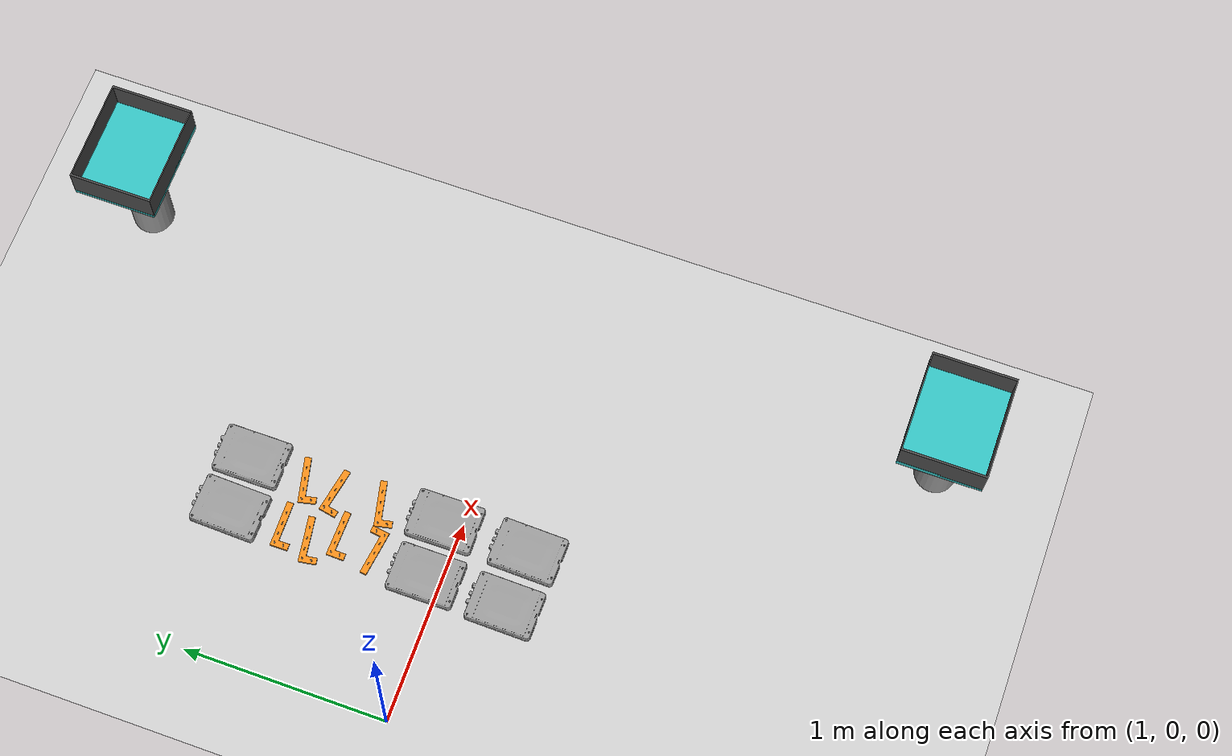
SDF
<sdf version="1.6">
 <world name="default">
  <model name="ground_plane">
   <static>1</static>
   <link name="link">
    <collision name="collision">
     <geometry><plane><normal>0 0 1</normal><size>100 100</size></plane></geometry>
     <surface><friction><ode><mu>100</mu><mu2>50</mu2></ode></friction></surface>
    </collision>
    <visual name="visual">
     <cast_shadows>0</cast_shadows>
     <geometry><plane><normal>0 0 1</normal><size>100 100</size></plane></geometry>
     <material>
      <script><uri>file://media/materials/scripts/gazebo.material</uri><name>PR2/Grey3</name></script>
     </material>
    </visual>
   </link>
  </model>
  <model name="bin_3">
   <static>1</static>
   <link name="column_link">
    <collision name="column">
     <pose>0 0 0.3 0 -0 0</pose>
     <geometry><box><size>0.4 0.5 0.6</size></box></geometry>
     <surface><friction><ode><mu>0.6</mu><mu2>0.6</mu2></ode></friction></surface>
    </collision>
    <visual name="column">
     <pose>0 0 0.3 0 -0 0</pose>
     <geometry><cylinder><radius>0.1</radius><length>0.6</length></cylinder></geometry>
     <material>
      <script><uri>file://media/materials/scripts/gazebo.material</uri><name>PR2/Grey4</name></script>
     </material>
    </visual>
   </link>
   <joint name="column2table" type="revolute">
    <parent>column_link</parent>
    <child>table_link</child>
    <pose>0 0 0.3 0 -0 0</pose>
   </joint>
   <link name="table_link">
    <collision name="surface">
     <pose>0 0 0.6 0 -0 0</pose>
     <geometry><box><size>0.5 0.4 0.03</size></box></geometry>
     <surface><friction><ode><mu>0.6</mu><mu2>0.6</mu2></ode></friction></surface>
    </collision>
    <visual name="surface">
     <pose>0 0 0.6 0 -0 0</pose>
     <geometry><box><size>0.5 0.4 0.03</size></box></geometry>
     <material>
      <script><uri>file://media/materials/scripts/gazebo.material</uri><name>Gazebo/Turquoise</name></script>
     </material>
    </visual>
   </link>
   <joint name="table2bin" type="prismatic">
    <parent>table_link</parent>
    <child>bin_link</child>
    <pose>0 0 1 0 -0 0</pose>
    <axis>
     <xyz>0 0 1</xyz>
     <use_parent_model_frame>0</use_parent_model_frame>
     <limit><lower>-1e+16</lower><upper>1e+16</upper></limit>
     <dynamics><spring_reference>0</spring_reference><spring_stiffness>0</spring_stiffness></dynamics>
    </axis>
   </joint>
   <link name="bin_link">
    <collision name="bin">
     <pose>0 0 0.68 0 -0 0</pose>
     <geometry><mesh><uri>model://table_bin/meshes/big_bin.stl</uri></mesh></geometry>
    </collision>
    <visual name="bin">
     <pose>0 0 0.68 0 -0 0</pose>
     <geometry><mesh><uri>model://table_bin/meshes/big_bin.dae</uri></mesh></geometry>
     <material>
      <script><uri>file://media/materials/scripts/gazebo.material</uri><name>Gazebo/DarkGrey</name></script>
     </material>
    </visual>
   </link>
   <pose>3 -2 0 0 -0 0</pose>
  </model>
  <model name="bin_4">
   <static>1</static>
   <link name="column_link">
    <collision name="column">
     <pose>0 0 0.3 0 -0 0</pose>
     <geometry><box><size>0.4 0.5 0.6</size></box></geometry>
     <surface><friction><ode><mu>0.6</mu><mu2>0.6</mu2></ode></friction></surface>
    </collision>
    <visual name="column">
     <pose>0 0 0.3 0 -0 0</pose>
     <geometry><cylinder><radius>0.1</radius><length>0.6</length></cylinder></geometry>
     <material>
      <script><uri>file://media/materials/scripts/gazebo.material</uri><name>PR2/Grey4</name></script>
     </material>
    </visual>
   </link>
   <joint name="column2table" type="revolute">
    <parent>column_link</parent>
    <child>table_link</child>
    <pose>0 0 0.3 0 -0 0</pose>
   </joint>
   <link name="table_link">
    <collision name="surface">
     <pose>0 0 0.6 0 -0 0</pose>
     <geometry><box><size>0.5 0.4 0.03</size></box></geometry>
     <surface><friction><ode><mu>0.6</mu><mu2>0.6</mu2></ode></friction></surface>
    </collision>
    <visual name="surface">
     <pose>0 0 0.6 0 -0 0</pose>
     <geometry><box><size>0.5 0.4 0.03</size></box></geometry>
     <material>
      <script><uri>file://media/materials/scripts/gazebo.material</uri><name>Gazebo/Turquoise</name></script>
     </material>
    </visual>
   </link>
   <joint name="table2bin" type="prismatic">
    <parent>table_link</parent>
    <child>bin_link</child>
    <pose>0 0 1 0 -0 0</pose>
    <axis>
     <xyz>0 0 1</xyz>
     <use_parent_model_frame>0</use_parent_model_frame>
     <limit><lower>-1e+16</lower><upper>1e+16</upper></limit>
     <dynamics><spring_reference>0</spring_reference><spring_stiffness>0</spring_stiffness></dynamics>
    </axis>
   </joint>
   <link name="bin_link">
    <collision name="bin">
     <pose>0 0 0.68 0 -0 0</pose>
     <geometry><mesh><uri>model://table_bin/meshes/big_bin.stl</uri></mesh></geometry>
    </collision>
    <visual name="bin">
     <pose>0 0 0.68 0 -0 0</pose>
     <geometry><mesh><uri>model://table_bin/meshes/big_bin.dae</uri></mesh></geometry>
     <material>
      <script><uri>file://media/materials/scripts/gazebo.material</uri><name>Gazebo/DarkGrey</name></script>
     </material>
    </visual>
   </link>
   <pose>3 2 0 0 -0 0</pose>
  </model>
  <model name="leaf6">
   <static>0</static>
   <link name="leaf_cell_link">
    <collision name="collision">
     <geometry><box><size>0.2228 0.3149 0.035</size></box></geometry>
     <surface><friction><ode><mu>1</mu><mu2>1</mu2></ode></friction></surface>
    </collision>
    <visual name="visual">
     <geometry><mesh><uri>model://leaf_cell/meshes/leaf_cell.dae</uri></mesh></geometry>
     <material>
      <script><uri>file://media/materials/scripts/gazebo.material</uri><name>Gazebo/Grey</name></script>
     </material>
    </visual>
    <inertial>
     <pose>0 0 0 0 0 -1.5707</pose>
     <mass>0.1</mass>
     <inertia>
      <ixx>0.000539835</ixx>
      <iyy>0.00075853</iyy>
      <izz>0.0012813</izz>
      <ixy>0</ixy>
      <ixz>0</ixz>
      <iyz>0</iyz>
     </inertia>
    </inertial>
   </link>
   <pose>1.72914 0.869771 0.823034 0.000103 0 -2e-06</pose>
  </model>
  <model name="leaf66">
   <static>0</static>
   <link name="leaf_cell_link">
    <collision name="collision">
     <geometry><box><size>0.2228 0.3149 0.035</size></box></geometry>
     <surface><friction><ode><mu>1</mu><mu2>1</mu2></ode></friction></surface>
    </collision>
    <visual name="visual">
     <geometry><mesh><uri>model://leaf_cell/meshes/leaf_cell.dae</uri></mesh></geometry>
     <material>
      <script><uri>file://media/materials/scripts/gazebo.material</uri><name>Gazebo/Grey</name></script>
     </material>
    </visual>
    <inertial>
     <pose>0 0 0 0 0 -1.5707</pose>
     <mass>0.1</mass>
     <inertia>
      <ixx>0.000539835</ixx>
      <iyy>0.00075853</iyy>
      <izz>0.0012813</izz>
      <ixy>0</ixy>
      <ixz>0</ixz>
      <iyz>0</iyz>
     </inertia>
    </inertial>
   </link>
   <pose>1.47735 0.870249 0.823044 0 5.4e-05 -0.028102</pose>
  </model>
  <model name="leaf5">
   <static>0</static>
   <link name="leaf_cell_link">
    <collision name="collision">
     <geometry><box><size>0.2228 0.3149 0.035</size></box></geometry>
     <surface><friction><ode><mu>1</mu><mu2>1</mu2></ode></friction></surface>
    </collision>
    <visual name="visual">
     <geometry><mesh><uri>model://leaf_cell/meshes/leaf_cell.dae</uri></mesh></geometry>
     <material>
      <script><uri>file://media/materials/scripts/gazebo.material</uri><name>Gazebo/Grey</name></script>
     </material>
    </visual>
    <inertial>
     <pose>0 0 0 0 0 -1.5707</pose>
     <mass>0.1</mass>
     <inertia>
      <ixx>0.000539835</ixx>
      <iyy>0.00075853</iyy>
      <izz>0.0012813</izz>
      <ixy>0</ixy>
      <ixz>0</ixz>
      <iyz>0</iyz>
     </inertia>
    </inertial>
   </link>
   <pose>1.73347 -0.029325 0.823034 -0.000103 -0 0.004565</pose>
  </model>
  <model name="leaf55">
   <static>0</static>
   <link name="leaf_cell_link">
    <collision name="collision">
     <geometry><box><size>0.2228 0.3149 0.035</size></box></geometry>
     <surface><friction><ode><mu>1</mu><mu2>1</mu2></ode></friction></surface>
    </collision>
    <visual name="visual">
     <geometry><mesh><uri>model://leaf_cell/meshes/leaf_cell.dae</uri></mesh></geometry>
     <material>
      <script><uri>file://media/materials/scripts/gazebo.material</uri><name>Gazebo/Grey</name></script>
     </material>
    </visual>
    <inertial>
     <pose>0 0 0 0 0 -1.5707</pose>
     <mass>0.1</mass>
     <inertia>
      <ixx>0.000539835</ixx>
      <iyy>0.00075853</iyy>
      <izz>0.0012813</izz>
      <ixy>0</ixy>
      <ixz>0</ixz>
      <iyz>0</iyz>
     </inertia>
    </inertial>
   </link>
   <pose>1.47744 -0.038686 0.823045 3e-05 3e-06 -0.002691</pose>
  </model>
  <model name="leaf4">
   <static>0</static>
   <link name="leaf_cell_link">
    <collision name="collision">
     <geometry><box><size>0.2228 0.3149 0.035</size></box></geometry>
     <surface><friction><ode><mu>1</mu><mu2>1</mu2></ode></friction></surface>
    </collision>
    <visual name="visual">
     <geometry><mesh><uri>model://leaf_cell/meshes/leaf_cell.dae</uri></mesh></geometry>
     <material>
      <script><uri>file://media/materials/scripts/gazebo.material</uri><name>Gazebo/Grey</name></script>
     </material>
    </visual>
    <inertial>
     <pose>0 0 0 0 0 -1.5707</pose>
     <mass>0.1</mass>
     <inertia>
      <ixx>0.000539835</ixx>
      <iyy>0.00075853</iyy>
      <izz>0.0012813</izz>
      <ixy>0</ixy>
      <ixz>0</ixz>
      <iyz>0</iyz>
     </inertia>
    </inertial>
   </link>
   <pose>1.72591 -0.414141 0.82305 0 0 -0.023072</pose>
  </model>
  <model name="leaf44">
   <static>0</static>
   <link name="leaf_cell_link">
    <collision name="collision">
     <geometry><box><size>0.2228 0.3149 0.035</size></box></geometry>
     <surface><friction><ode><mu>1</mu><mu2>1</mu2></ode></friction></surface>
    </collision>
    <visual name="visual">
     <geometry><mesh><uri>model://leaf_cell/meshes/leaf_cell.dae</uri></mesh></geometry>
     <material>
      <script><uri>file://media/materials/scripts/gazebo.material</uri><name>Gazebo/Grey</name></script>
     </material>
    </visual>
    <inertial>
     <pose>0 0 0 0 0 -1.5707</pose>
     <mass>0.1</mass>
     <inertia>
      <ixx>0.000539835</ixx>
      <iyy>0.00075853</iyy>
      <izz>0.0012813</izz>
      <ixy>0</ixy>
      <ixz>0</ixz>
      <iyz>0</iyz>
     </inertia>
    </inertial>
   </link>
   <pose>1.46423 -0.403984 0.82305 0 0 -0.014374</pose>
  </model>
  <model name="bracket">
   <static>0</static>
   <link name="link0">
    <collision name="collision">
     <geometry><mesh><uri>model://bracket/meshes/bracket.stl</uri></mesh></geometry>
     <surface><friction><ode><mu>0.99</mu><mu2>0.99</mu2></ode></friction></surface>
    </collision>
    <visual name="visual">
     <geometry><mesh><uri>model://bracket/meshes/bracket_modified.dae</uri></mesh></geometry>
     <material>
      <script><uri>file://media/materials/scripts/gazebo.material</uri><name>Gazebo/Orange</name></script>
     </material>
    </visual>
    <inertial>
     <pose>-0.005 0 0.0025 0 -0 0</pose>
     <mass>0.1</mass>
     <inertia>
      <ixx>5.417e-05</ixx>
      <ixy>0</ixy>
      <ixz>0</ixz>
      <iyy>0.000368333</iyy>
      <iyz>0</iyz>
      <izz>0.000420833</izz>
     </inertia>
    </inertial>
   </link>
   <pose>1.71306 0.467584 0.80805 0 0 -0.188486</pose>
  </model>
  <model name="bracket_clone">
   <static>0</static>
   <link name="link0">
    <collision name="collision">
     <geometry><mesh><uri>model://bracket/meshes/bracket.stl</uri></mesh></geometry>
     <surface><friction><ode><mu>0.99</mu><mu2>0.99</mu2></ode></friction></surface>
    </collision>
    <visual name="visual">
     <geometry><mesh><uri>model://bracket/meshes/bracket_modified.dae</uri></mesh></geometry>
     <material>
      <script><uri>file://media/materials/scripts/gazebo.material</uri><name>Gazebo/Orange</name></script>
     </material>
    </visual>
    <inertial>
     <pose>-0.005 0 0.0025 0 -0 0</pose>
     <mass>0.1</mass>
     <inertia>
      <ixx>5.417e-05</ixx>
      <ixy>0</ixy>
      <ixz>0</ixz>
      <iyy>0.000368333</iyy>
      <iyz>0</iyz>
      <izz>0.000420833</izz>
     </inertia>
    </inertial>
   </link>
   <pose>1.72531 0.260477 0.808039 -2.6e-05 -0.000117 0.220721</pose>
  </model>
  <model name="bracket_clone_0">
   <static>0</static>
   <link name="link0">
    <collision name="collision">
     <geometry><mesh><uri>model://bracket/meshes/bracket.stl</uri></mesh></geometry>
     <surface><friction><ode><mu>0.99</mu><mu2>0.99</mu2></ode></friction></surface>
    </collision>
    <visual name="visual">
     <geometry><mesh><uri>model://bracket/meshes/bracket_modified.dae</uri></mesh></geometry>
     <material>
      <script><uri>file://media/materials/scripts/gazebo.material</uri><name>Gazebo/Orange</name></script>
     </material>
    </visual>
    <inertial>
     <pose>-0.005 0 0.0025 0 -0 0</pose>
     <mass>0.1</mass>
     <inertia>
      <ixx>5.417e-05</ixx>
      <ixy>0</ixy>
      <ixz>0</ixz>
      <iyy>0.000368333</iyy>
      <iyz>0</iyz>
      <izz>0.000420833</izz>
     </inertia>
    </inertial>
   </link>
   <pose>1.7152 0.611776 0.808048 0.000115 -0 0.226468</pose>
  </model>
  <model name="bracket_clone_1">
   <static>0</static>
   <link name="link0">
    <collision name="collision">
     <geometry><mesh><uri>model://bracket/meshes/bracket.stl</uri></mesh></geometry>
     <surface><friction><ode><mu>0.99</mu><mu2>0.99</mu2></ode></friction></surface>
    </collision>
    <visual name="visual">
     <geometry><mesh><uri>model://bracket/meshes/bracket_modified.dae</uri></mesh></geometry>
     <material>
      <script><uri>file://media/materials/scripts/gazebo.material</uri><name>Gazebo/Orange</name></script>
     </material>
    </visual>
    <inertial>
     <pose>-0.005 0 0.0025 0 -0 0</pose>
     <mass>0.1</mass>
     <inertia>
      <ixx>5.417e-05</ixx>
      <ixy>0</ixy>
      <ixz>0</ixz>
      <iyy>0.000368333</iyy>
      <iyz>0</iyz>
      <izz>0.000420833</izz>
     </inertia>
    </inertial>
   </link>
   <pose>1.49222 0.628172 0.808048 0.000141 0 0.011543</pose>
  </model>
  <model name="bracket_clone_2">
   <static>0</static>
   <link name="link0">
    <collision name="collision">
     <geometry><mesh><uri>model://bracket/meshes/bracket.stl</uri></mesh></geometry>
     <surface><friction><ode><mu>0.99</mu><mu2>0.99</mu2></ode></friction></surface>
    </collision>
    <visual name="visual">
     <geometry><mesh><uri>model://bracket/meshes/bracket_modified.dae</uri></mesh></geometry>
     <material>
      <script><uri>file://media/materials/scripts/gazebo.material</uri><name>Gazebo/Orange</name></script>
     </material>
    </visual>
    <inertial>
     <pose>-0.005 0 0.0025 0 -0 0</pose>
     <mass>0.1</mass>
     <inertia>
      <ixx>5.417e-05</ixx>
      <ixy>0</ixy>
      <ixz>0</ixz>
      <iyy>0.000368333</iyy>
      <iyz>0</iyz>
      <izz>0.000420833</izz>
     </inertia>
    </inertial>
   </link>
   <pose>1.46439 0.501624 0.808048 0.000141 -0 0.150219</pose>
  </model>
  <model name="bracket_clone_3">
   <static>0</static>
   <link name="link0">
    <collision name="collision">
     <geometry><mesh><uri>model://bracket/meshes/bracket.stl</uri></mesh></geometry>
     <surface><friction><ode><mu>0.99</mu><mu2>0.99</mu2></ode></friction></surface>
    </collision>
    <visual name="visual">
     <geometry><mesh><uri>model://bracket/meshes/bracket_modified.dae</uri></mesh></geometry>
     <material>
      <script><uri>file://media/materials/scripts/gazebo.material</uri><name>Gazebo/Orange</name></script>
     </material>
    </visual>
    <inertial>
     <pose>-0.005 0 0.0025 0 -0 0</pose>
     <mass>0.1</mass>
     <inertia>
      <ixx>5.417e-05</ixx>
      <ixy>0</ixy>
      <ixz>0</ixz>
      <iyy>0.000368333</iyy>
      <iyz>0</iyz>
      <izz>0.000420833</izz>
     </inertia>
    </inertial>
   </link>
   <pose>1.53441 0.379924 0.808045 -7.8e-05 -0 -0.020892</pose>
  </model>
  <model name="bracket_clone_3_clone">
   <static>0</static>
   <link name="link0">
    <collision name="collision">
     <geometry><mesh><uri>model://bracket/meshes/bracket.stl</uri></mesh></geometry>
     <surface><friction><ode><mu>0.99</mu><mu2>0.99</mu2></ode></friction></surface>
    </collision>
    <visual name="visual">
     <geometry><mesh><uri>model://bracket/meshes/bracket_modified.dae</uri></mesh></geometry>
     <material>
      <script><uri>file://media/materials/scripts/gazebo.material</uri><name>Gazebo/Orange</name></script>
     </material>
    </visual>
    <inertial>
     <pose>-0.005 0 0.0025 0 -0 0</pose>
     <mass>0.1</mass>
     <inertia>
      <ixx>5.417e-05</ixx>
      <ixy>0</ixy>
      <ixz>0</ixz>
      <iyy>0.000368333</iyy>
      <iyz>0</iyz>
      <izz>0.000420833</izz>
     </inertia>
    </inertial>
   </link>
   <pose>1.49708 0.203416 0.808045 -0 4.4e-05 3.00437</pose>
  </model>
 </world>
</sdf>
